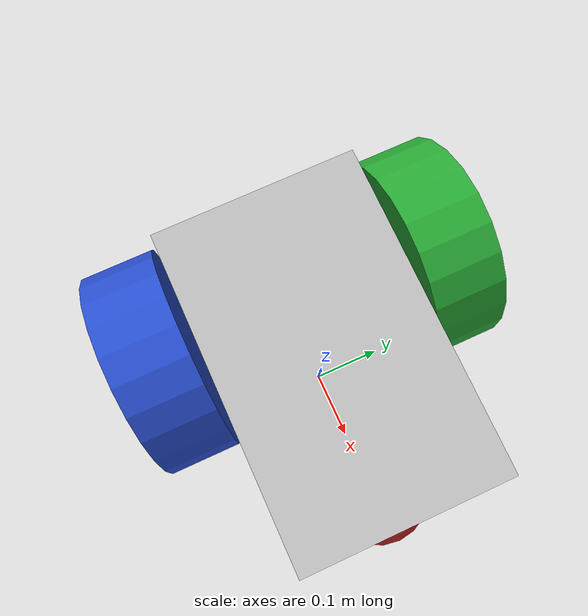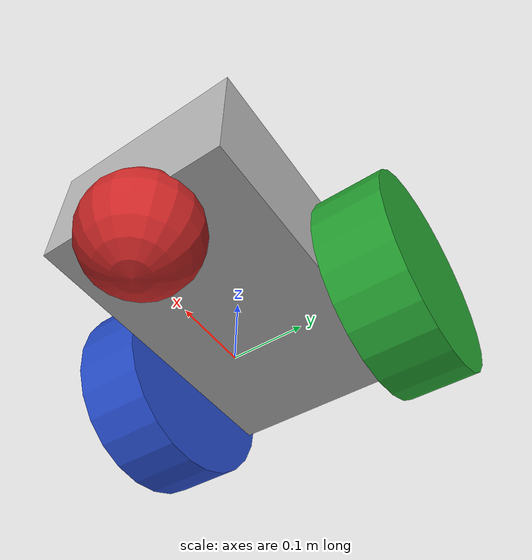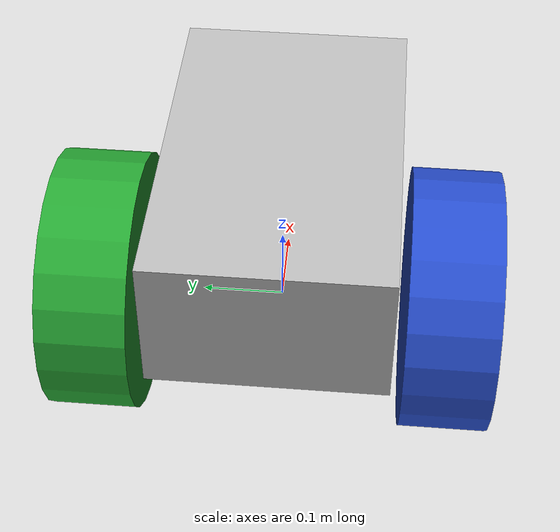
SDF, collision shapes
<?xml version="1.0" ?>
<sdf version="1.5">
  <model name="pioneer_custom">

    <!-- Основное шасси -->
    <link name="chassis">
      <pose>0 0 0.16 0 0 0</pose>
      <inertial>
        <mass>5.67</mass>
        <inertia>
          <ixx>0.07</ixx>
          <iyy>0.08</iyy>
          <izz>0.10</izz>
        </inertia>
      </inertial>
      <collision name="collision">
        <geometry>
          <box><size>0.445 0.277 0.17</size></box>
        </geometry>
      </collision>
      <visual name="visual">
        <pose>0 0 0.04 0 0 0</pose>
        <geometry>
          <mesh>
            <uri>model://pioneer2dx/meshes/chassis.dae</uri>
          </mesh>
        </geometry>
      </visual>
    </link>

    <!-- Передний поворотный узел -->
    <link name="front_wheel_yaw">
      <pose>0.19 0 0.05 0 0 0</pose>
      <inertial><mass>0.1</mass></inertial>
    </link>

    <!-- Переднее колесо (ролик - сфера) -->
    <link name="front_wheel">
      <pose>0.19 0 0.05 0 0 0</pose>
      <inertial>
        <mass>1.0</mass>
        <inertia><ixx>0.002</ixx><iyy>0.002</iyy><izz>0.004</izz></inertia>
      </inertial>
      <collision name="collision">
        <geometry>
          <sphere><radius>0.08</radius></sphere>
        </geometry>
      </collision>
      <visual name="visual">
        <geometry>
          <sphere><radius>0.08</radius></sphere>
        </geometry>
        <material>
          <script>
            <uri>file://media/materials/scripts/gazebo.material</uri>
            <name>Gazebo/Red</name>
          </script>
        </material>
      </visual>
    </link>

    <!-- Задние колёса -->
    <link name="left_wheel">
      <pose>-0.1 0.2 0.11 0 1.5707 1.5707</pose>
      <inertial><mass>1.5</mass></inertial>
      <collision name="collision">
        <geometry>
          <cylinder><radius>0.15</radius><length>0.1</length></cylinder>
        </geometry>
      </collision>
      <visual name="visual">
        <geometry>
          <cylinder><radius>0.15</radius><length>0.1</length></cylinder>
        </geometry>
        <material>
          <script>
            <uri>file://media/materials/scripts/gazebo.material</uri>
            <name>Gazebo/Green</name>
          </script>
        </material>
      </visual>
    </link>

    <link name="right_wheel">
      <pose>-0.1 -0.2 0.11 0 1.5707 1.5707</pose>
      <inertial><mass>1.5</mass></inertial>
      <collision name="collision">
        <geometry>
          <cylinder><radius>0.15</radius><length>0.1</length></cylinder>
        </geometry>
      </collision>
      <visual name="visual">
        <geometry>
          <cylinder><radius>0.15</radius><length>0.1</length></cylinder>
        </geometry>
        <material>
          <script>
            <uri>file://media/materials/scripts/gazebo.material</uri>
            <name>Gazebo/Blue</name>
          </script>
        </material>
      </visual>
    </link>

<!-- Камера -->
<link name="camera_link">
  <pose>0.2 0 0.25 0 0 0</pose>
  <gravity>false</gravity> <!-- Отключение гравитации -->
  <sensor name="camera" type="camera">
    <camera>
      <horizontal_fov>1.047</horizontal_fov>
      <image>
        <width>640</width>
        <height>480</height>
        <format>R8G8B8</format>
      </image>
      <clip>
        <near>0.1</near>
        <far>100</far>
      </clip>
    </camera>
    <plugin name="camera_controller" filename="libgazebo_ros_camera.so">
    <cameraName>pioneer_custom/camera</cameraName>
    <imageTopicName>image_raw</imageTopicName>
    <cameraInfoTopicName>camera_info</cameraInfoTopicName>
    <frameName>camera_link</frameName>
    </plugin>
    <always_on>true</always_on>
    <update_rate>30</update_rate>
    <visualize>true</visualize>
  </sensor>
</link>

<!-- Джойнт камеры к шасси -->
<joint name="camera_joint" type="fixed">
  <parent>chassis</parent>
  <child>camera_link</child>
</joint>

    <!-- IMU -->
<link name="imu_link">
  <pose>0 0 0.2 0 0 0</pose>
  <inertial>
    <mass>0.01</mass>
    <inertia>
      <ixx>1e-6</ixx>
      <iyy>1e-6</iyy>
      <izz>1e-6</izz>
    </inertia>
  </inertial>
  <collision name="collision">
    <geometry>
      <box><size>0.01 0.01 0.01</size></box>
    </geometry>
  </collision>
  <visual name="visual">
    <geometry>
      <box><size>0.01 0.01 0.01</size></box>
    </geometry>
    <material>
      <script>
        <uri>file://media/materials/scripts/gazebo.material</uri>
        <name>Gazebo/Black</name>
      </script>
    </material>
  </visual>

  <!-- IMU sensor с ROS-плагином -->
  <sensor name="imu_sensor" type="imu">
    <always_on>true</always_on>
    <update_rate>50</update_rate>
    <imu>
      <angular_velocity>
        <x>true</x> <y>true</y> <z>true</z>
      </angular_velocity>
      <linear_acceleration>
        <x>true</x> <y>true</y> <z>true</z>
      </linear_acceleration>
    </imu>
    <plugin name="imu_plugin" filename="libgazebo_ros_imu_sensor.so">
      <ros>
        <namespace>/pioneer</namespace>
        <remapping>~/imu/data:=imu/data</remapping>
      </ros>
      <frameName>imu_link</frameName>
      <topicName>imu/data</topicName>
    </plugin>
  </sensor>
</link>

<!-- Joint для IMU -->
<joint name="imu_joint" type="fixed">
  <parent>chassis</parent>
  <child>imu_link</child>
</joint>

    <!-- Джойнты -->
    <joint type="revolute" name="left_wheel_hinge">
      <parent>chassis</parent>
      <child>left_wheel</child>
      <axis><xyz>0 1 0</xyz></axis>
    </joint>

    <joint type="revolute" name="right_wheel_hinge">
      <parent>chassis</parent>
      <child>right_wheel</child>
      <axis><xyz>0 1 0</xyz></axis>
    </joint>

    <!-- Переднее колесо: поворот (yaw) -->
    <joint type="revolute" name="front_yaw_joint">
      <parent>chassis</parent>
      <child>front_wheel_yaw</child>
      <axis><xyz>0 0 1</xyz></axis>
    </joint>

    <!-- Переднее колесо: вращение (spin) -->
    <joint type="revolute" name="front_wheel_spin">
      <parent>front_wheel_yaw</parent>
      <child>front_wheel</child>
      <axis><xyz>0 1 0</xyz></axis>
    </joint>

    <!-- Плагин дифференциального привода -->
    <plugin filename="libDiffDrivePlugin.so" name="diff_drive">
      <left_joint>left_wheel_hinge</left_joint>
      <right_joint>right_wheel_hinge</right_joint>
      <torque>5</torque>
    </plugin>

  </model>
</sdf>
